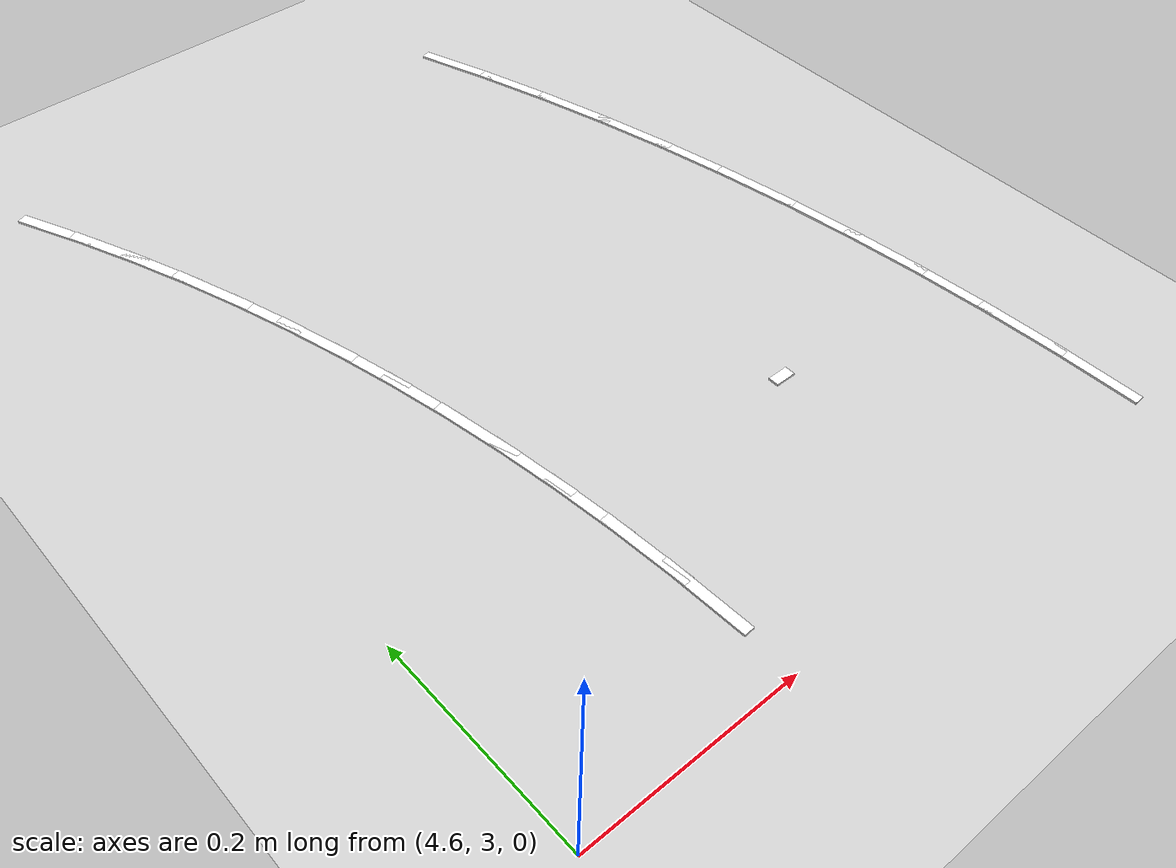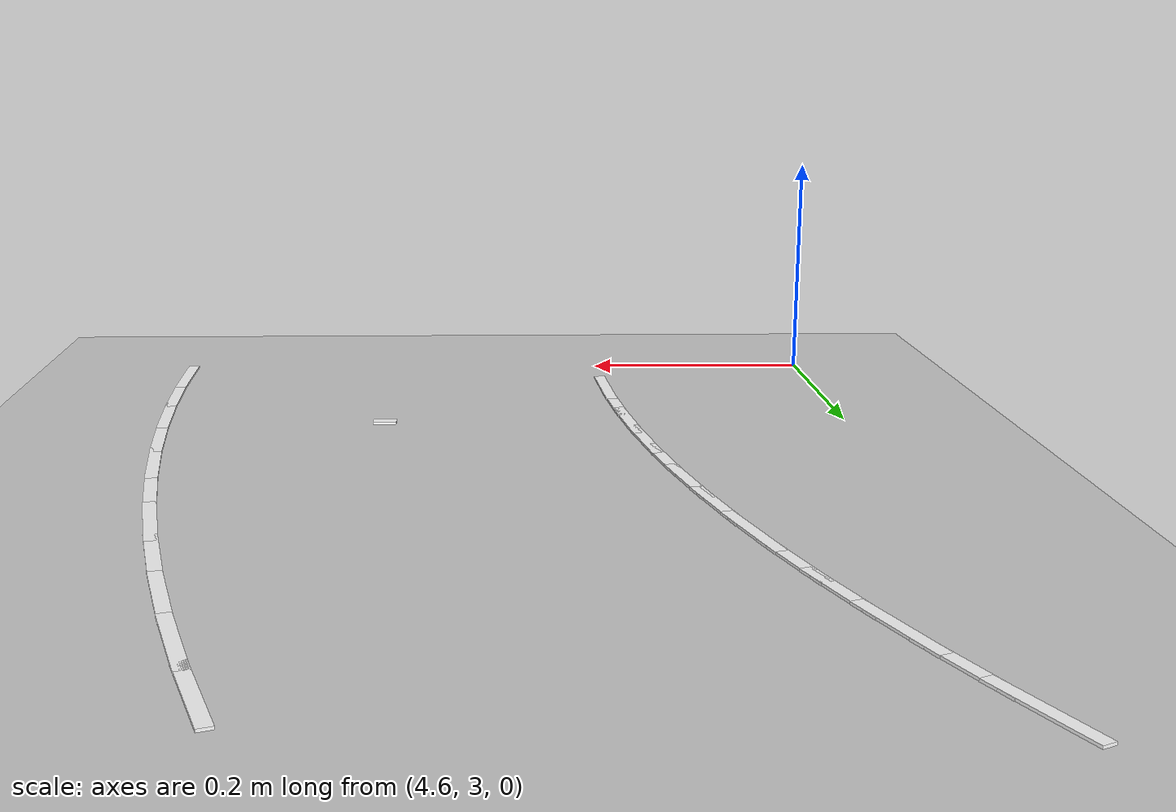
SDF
<sdf version="1.7">
 <world name="default">
  <model name="ground_plane">
   <static>1</static>
   <link name="link">
    <collision name="collision">
     <geometry><plane><normal>0 0 1</normal><size>100 100</size></plane></geometry>
     <surface>
      <contact><collide_bitmask>65535</collide_bitmask></contact>
      <friction><ode><mu>100</mu><mu2>50</mu2></ode></friction>
     </surface>
    </collision>
    <visual name="visual">
     <cast_shadows>0</cast_shadows>
     <geometry><plane><normal>0 0 1</normal><size>100 100</size></plane></geometry>
     <material>
      <script><uri>file://media/materials/scripts/gazebo.material</uri><name>Gazebo/Grey</name></script>
     </material>
    </visual>
   </link>
  </model>
  <model name="lane_line_left_149">
   <static>1</static>
   <link name="link">
    <pose>0 0 -0.004 0 -0 0</pose>
    <visual name="visual">
     <geometry><box><size>0.02 0.01 0.01</size></box></geometry>
     <material><ambient>1 1 1 1</ambient><diffuse>1 1 1 1</diffuse></material>
    </visual>
    <collision name="collision"><geometry><box><size>0.02 0.01 0.01</size></box></geometry></collision>
   </link>
   <pose>5 3.2 0 0 -0 0</pose>
  </model>
  <model name="lane_line_right_150">
   <static>1</static>
   <link name="link">
    <pose>0 0 -0.004 0 -0 0</pose>
    <visual name="visual">
     <geometry><box><size>0.0841 0.01 0.01</size></box></geometry>
     <material><ambient>1 1 1 1</ambient><diffuse>1 1 1 1</diffuse></material>
    </visual>
    <collision name="collision"><geometry><box><size>0.0841 0.01 0.01</size></box></geometry></collision>
   </link>
   <pose>5.19946 3.03526 0 0 -0 1.58682</pose>
  </model>
  <model name="lane_line_left_151">
   <static>1</static>
   <link name="link">
    <pose>0 0 -0.004 0 -0 0</pose>
    <visual name="visual">
     <geometry><box><size>0.0841 0.01 0.01</size></box></geometry>
     <material><ambient>1 1 1 1</ambient><diffuse>1 1 1 1</diffuse></material>
    </visual>
    <collision name="collision"><geometry><box><size>0.0841 0.01 0.01</size></box></geometry></collision>
   </link>
   <pose>4.79766 3.08651 0 0 -0 1.61888</pose>
  </model>
  <model name="lane_line_right_151">
   <static>1</static>
   <link name="link">
    <pose>0 0 -0.004 0 -0 0</pose>
    <visual name="visual">
     <geometry><box><size>0.0841 0.01 0.01</size></box></geometry>
     <material><ambient>1 1 1 1</ambient><diffuse>1 1 1 1</diffuse></material>
    </visual>
    <collision name="collision"><geometry><box><size>0.0841 0.01 0.01</size></box></geometry></collision>
   </link>
   <pose>5.1972 3.10574 0 0 -0 1.61888</pose>
  </model>
  <model name="lane_line_left_152">
   <static>1</static>
   <link name="link">
    <pose>0 0 -0.004 0 -0 0</pose>
    <visual name="visual">
     <geometry><box><size>0.0841 0.01 0.01</size></box></geometry>
     <material><ambient>1 1 1 1</ambient><diffuse>1 1 1 1</diffuse></material>
    </visual>
    <collision name="collision"><geometry><box><size>0.0841 0.01 0.01</size></box></geometry></collision>
   </link>
   <pose>4.79397 3.14408 0 0 -0 1.65094</pose>
  </model>
  <model name="lane_line_right_152">
   <static>1</static>
   <link name="link">
    <pose>0 0 -0.004 0 -0 0</pose>
    <visual name="visual">
     <geometry><box><size>0.0841 0.01 0.01</size></box></geometry>
     <material><ambient>1 1 1 1</ambient><diffuse>1 1 1 1</diffuse></material>
    </visual>
    <collision name="collision"><geometry><box><size>0.0841 0.01 0.01</size></box></geometry></collision>
   </link>
   <pose>5.19268 3.1761 0 0 -0 1.65094</pose>
  </model>
  <model name="lane_line_left_153">
   <static>1</static>
   <link name="link">
    <pose>0 0 -0.004 0 -0 0</pose>
    <visual name="visual">
     <geometry><box><size>0.0841 0.01 0.01</size></box></geometry>
     <material><ambient>1 1 1 1</ambient><diffuse>1 1 1 1</diffuse></material>
    </visual>
    <collision name="collision"><geometry><box><size>0.0841 0.01 0.01</size></box></geometry></collision>
   </link>
   <pose>4.78843 3.20151 0 0 -0 1.683</pose>
  </model>
  <model name="lane_line_right_153">
   <static>1</static>
   <link name="link">
    <pose>0 0 -0.004 0 -0 0</pose>
    <visual name="visual">
     <geometry><box><size>0.0841 0.01 0.01</size></box></geometry>
     <material><ambient>1 1 1 1</ambient><diffuse>1 1 1 1</diffuse></material>
    </visual>
    <collision name="collision"><geometry><box><size>0.0841 0.01 0.01</size></box></geometry></collision>
   </link>
   <pose>5.18591 3.24629 0 0 -0 1.683</pose>
  </model>
  <model name="lane_line_left_154">
   <static>1</static>
   <link name="link">
    <pose>0 0 -0.004 0 -0 0</pose>
    <visual name="visual">
     <geometry><box><size>0.0841 0.01 0.01</size></box></geometry>
     <material><ambient>1 1 1 1</ambient><diffuse>1 1 1 1</diffuse></material>
    </visual>
    <collision name="collision"><geometry><box><size>0.0841 0.01 0.01</size></box></geometry></collision>
   </link>
   <pose>4.78105 3.25873 0 0 -0 1.71505</pose>
  </model>
  <model name="lane_line_right_154">
   <static>1</static>
   <link name="link">
    <pose>0 0 -0.004 0 -0 0</pose>
    <visual name="visual">
     <geometry><box><size>0.0841 0.01 0.01</size></box></geometry>
     <material><ambient>1 1 1 1</ambient><diffuse>1 1 1 1</diffuse></material>
    </visual>
    <collision name="collision"><geometry><box><size>0.0841 0.01 0.01</size></box></geometry></collision>
   </link>
   <pose>5.17689 3.31623 0 0 -0 1.71505</pose>
  </model>
  <model name="lane_line_left_155">
   <static>1</static>
   <link name="link">
    <pose>0 0 -0.004 0 -0 0</pose>
    <visual name="visual">
     <geometry><box><size>0.0841 0.01 0.01</size></box></geometry>
     <material><ambient>1 1 1 1</ambient><diffuse>1 1 1 1</diffuse></material>
    </visual>
    <collision name="collision"><geometry><box><size>0.0841 0.01 0.01</size></box></geometry></collision>
   </link>
   <pose>4.77184 3.31568 0 0 -0 1.74711</pose>
  </model>
  <model name="lane_line_right_155">
   <static>1</static>
   <link name="link">
    <pose>0 0 -0.004 0 -0 0</pose>
    <visual name="visual">
     <geometry><box><size>0.0841 0.01 0.01</size></box></geometry>
     <material><ambient>1 1 1 1</ambient><diffuse>1 1 1 1</diffuse></material>
    </visual>
    <collision name="collision"><geometry><box><size>0.0841 0.01 0.01</size></box></geometry></collision>
   </link>
   <pose>5.16564 3.38584 0 0 -0 1.74711</pose>
  </model>
  <model name="lane_line_left_156">
   <static>1</static>
   <link name="link">
    <pose>0 0 -0.004 0 -0 0</pose>
    <visual name="visual">
     <geometry><box><size>0.0841 0.01 0.01</size></box></geometry>
     <material><ambient>1 1 1 1</ambient><diffuse>1 1 1 1</diffuse></material>
    </visual>
    <collision name="collision"><geometry><box><size>0.0841 0.01 0.01</size></box></geometry></collision>
   </link>
   <pose>4.76081 3.37231 0 0 -0 1.77917</pose>
  </model>
  <model name="lane_line_right_156">
   <static>1</static>
   <link name="link">
    <pose>0 0 -0.004 0 -0 0</pose>
    <visual name="visual">
     <geometry><box><size>0.0841 0.01 0.01</size></box></geometry>
     <material><ambient>1 1 1 1</ambient><diffuse>1 1 1 1</diffuse></material>
    </visual>
    <collision name="collision"><geometry><box><size>0.0841 0.01 0.01</size></box></geometry></collision>
   </link>
   <pose>5.15216 3.45505 0 0 -0 1.77917</pose>
  </model>
  <model name="lane_line_left_157">
   <static>1</static>
   <link name="link">
    <pose>0 0 -0.004 0 -0 0</pose>
    <visual name="visual">
     <geometry><box><size>0.0841 0.01 0.01</size></box></geometry>
     <material><ambient>1 1 1 1</ambient><diffuse>1 1 1 1</diffuse></material>
    </visual>
    <collision name="collision"><geometry><box><size>0.0841 0.01 0.01</size></box></geometry></collision>
   </link>
   <pose>4.74798 3.42855 0 0 -0 1.81122</pose>
  </model>
  <model name="lane_line_right_157">
   <static>1</static>
   <link name="link">
    <pose>0 0 -0.004 0 -0 0</pose>
    <visual name="visual">
     <geometry><box><size>0.0841 0.01 0.01</size></box></geometry>
     <material><ambient>1 1 1 1</ambient><diffuse>1 1 1 1</diffuse></material>
    </visual>
    <collision name="collision"><geometry><box><size>0.0841 0.01 0.01</size></box></geometry></collision>
   </link>
   <pose>5.13647 3.5238 0 0 -0 1.81122</pose>
  </model>
  <model name="lane_line_left_158">
   <static>1</static>
   <link name="link">
    <pose>0 0 -0.004 0 -0 0</pose>
    <visual name="visual">
     <geometry><box><size>0.0841 0.01 0.01</size></box></geometry>
     <material><ambient>1 1 1 1</ambient><diffuse>1 1 1 1</diffuse></material>
    </visual>
    <collision name="collision"><geometry><box><size>0.0841 0.01 0.01</size></box></geometry></collision>
   </link>
   <pose>4.73334 3.48436 0 0 -0 1.84328</pose>
  </model>
  <model name="lane_line_right_158">
   <static>1</static>
   <link name="link">
    <pose>0 0 -0.004 0 -0 0</pose>
    <visual name="visual">
     <geometry><box><size>0.0841 0.01 0.01</size></box></geometry>
     <material><ambient>1 1 1 1</ambient><diffuse>1 1 1 1</diffuse></material>
    </visual>
    <collision name="collision"><geometry><box><size>0.0841 0.01 0.01</size></box></geometry></collision>
   </link>
   <pose>5.11858 3.59201 0 0 -0 1.84328</pose>
  </model>
  <model name="lane_line_left_159">
   <static>1</static>
   <link name="link">
    <pose>0 0 -0.004 0 -0 0</pose>
    <visual name="visual">
     <geometry><box><size>0.0841 0.01 0.01</size></box></geometry>
     <material><ambient>1 1 1 1</ambient><diffuse>1 1 1 1</diffuse></material>
    </visual>
    <collision name="collision"><geometry><box><size>0.0841 0.01 0.01</size></box></geometry></collision>
   </link>
   <pose>4.71693 3.53966 0 0 -0 1.87534</pose>
  </model>
  <model name="lane_line_right_159">
   <static>1</static>
   <link name="link">
    <pose>0 0 -0.004 0 -0 0</pose>
    <visual name="visual">
     <geometry><box><size>0.0841 0.01 0.01</size></box></geometry>
     <material><ambient>1 1 1 1</ambient><diffuse>1 1 1 1</diffuse></material>
    </visual>
    <collision name="collision"><geometry><box><size>0.0841 0.01 0.01</size></box></geometry></collision>
   </link>
   <pose>5.09852 3.65961 0 0 -0 1.87534</pose>
  </model>
  <model name="lane_line_left_160">
   <static>1</static>
   <link name="link">
    <pose>0 0 -0.004 0 -0 0</pose>
    <visual name="visual">
     <geometry><box><size>0.0841 0.01 0.01</size></box></geometry>
     <material><ambient>1 1 1 1</ambient><diffuse>1 1 1 1</diffuse></material>
    </visual>
    <collision name="collision"><geometry><box><size>0.0841 0.01 0.01</size></box></geometry></collision>
   </link>
   <pose>4.69875 3.59442 0 0 -0 1.9074</pose>
  </model>
  <model name="lane_line_right_160">
   <static>1</static>
   <link name="link">
    <pose>0 0 -0.004 0 -0 0</pose>
    <visual name="visual">
     <geometry><box><size>0.0841 0.01 0.01</size></box></geometry>
     <material><ambient>1 1 1 1</ambient><diffuse>1 1 1 1</diffuse></material>
    </visual>
    <collision name="collision"><geometry><box><size>0.0841 0.01 0.01</size></box></geometry></collision>
   </link>
   <pose>5.0763 3.72653 0 0 -0 1.9074</pose>
  </model>
  <model name="lane_line_left_161">
   <static>1</static>
   <link name="link">
    <pose>0 0 -0.004 0 -0 0</pose>
    <visual name="visual">
     <geometry><box><size>0.0841 0.01 0.01</size></box></geometry>
     <material><ambient>1 1 1 1</ambient><diffuse>1 1 1 1</diffuse></material>
    </visual>
    <collision name="collision"><geometry><box><size>0.0841 0.01 0.01</size></box></geometry></collision>
   </link>
   <pose>4.67882 3.64856 0 0 -0 1.93945</pose>
  </model>
  <model name="lane_line_left_162">
   <static>1</static>
   <link name="link">
    <pose>0 0 -0.004 0 -0 0</pose>
    <visual name="visual">
     <geometry><box><size>0.0841 0.01 0.01</size></box></geometry>
     <material><ambient>1 1 1 1</ambient><diffuse>1 1 1 1</diffuse></material>
    </visual>
    <collision name="collision"><geometry><box><size>0.0841 0.01 0.01</size></box></geometry></collision>
   </link>
   <pose>4.65717 3.70204 0 0 -0 1.97151</pose>
  </model>
  <model name="lane_line_left_163">
   <static>1</static>
   <link name="link">
    <pose>0 0 -0.004 0 -0 0</pose>
    <visual name="visual">
     <geometry><box><size>0.0841 0.01 0.01</size></box></geometry>
     <material><ambient>1 1 1 1</ambient><diffuse>1 1 1 1</diffuse></material>
    </visual>
    <collision name="collision"><geometry><box><size>0.0841 0.01 0.01</size></box></geometry></collision>
   </link>
   <pose>4.63382 3.75479 0 0 -0 2.00357</pose>
  </model>
 </world>
</sdf>
